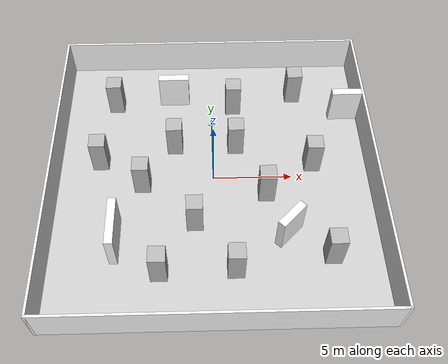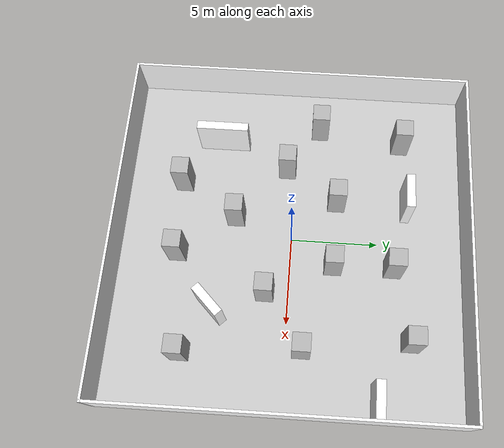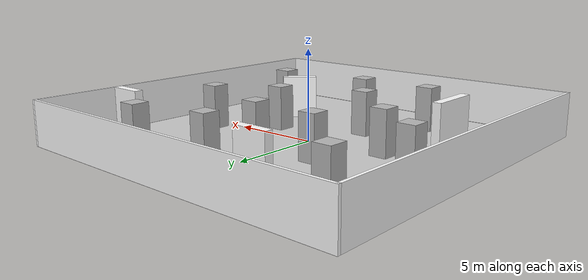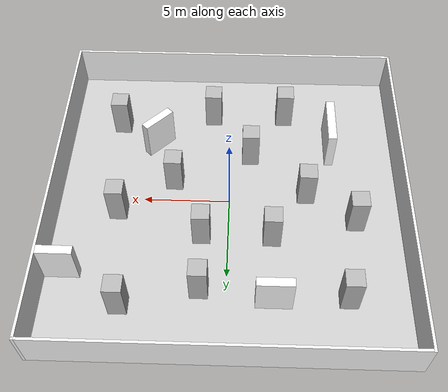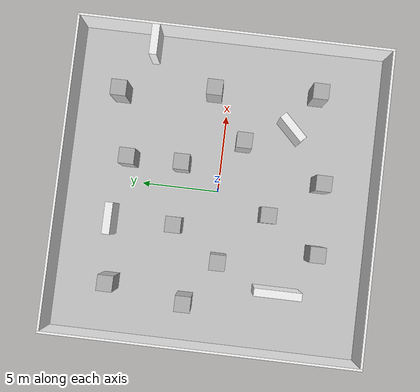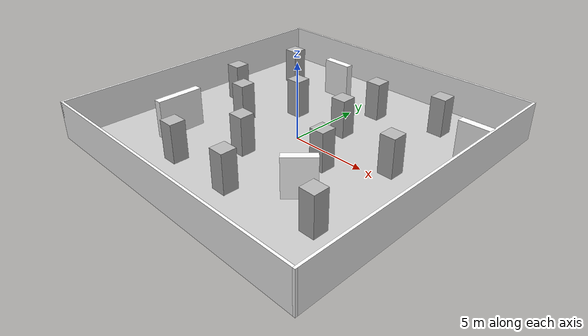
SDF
<sdf version="1.6">
 <world name="default">
  <light name="sun" type="directional">
   <pose>0 0 10 0 -0 0</pose>
   <diffuse>0.8 0.8 0.8 1</diffuse>
   <specular>0.2 0.2 0.2 1</specular>
   <attenuation>
    <range>1000</range>
    <constant>0.9</constant>
    <linear>0.01</linear>
    <quadratic>0.001</quadratic>
   </attenuation>
   <direction>-0.5 0.1 -0.9</direction>
  </light>
  <gravity>0 0 -9.8</gravity>
  <magnetic_field>6e-06 2.3e-05 -4.2e-05</magnetic_field>
  <atmosphere type="adiabatic"/>
  <physics name="default_physics" default="0" type="ode">
   <max_step_size>0.001</max_step_size>
   <real_time_factor>1</real_time_factor>
   <real_time_update_rate>1000</real_time_update_rate>
  </physics>
  <scene><ambient>0.4 0.4 0.4 1</ambient><background>0.7 0.7 0.7 1</background><shadows>1</shadows></scene>
  <audio><device>default</device></audio>
  <spherical_coordinates>
   <surface_model>EARTH_WGS84</surface_model>
   <latitude_deg>0</latitude_deg>
   <longitude_deg>0</longitude_deg>
   <elevation>0</elevation>
   <heading_deg>0</heading_deg>
  </spherical_coordinates>
  <model name="Indoor20x20">
   <pose>0.021784 -0.01983 0 0 -0 0</pose>
   <link name="Wall_0">
    <collision name="Wall_0_Collision">
     <geometry><box><size>20.15 0.15 2.5</size></box></geometry>
     <pose>0 0 1.25 0 -0 0</pose>
    </collision>
    <visual name="Wall_0_Visual">
     <pose>0 0 1.25 0 -0 0</pose>
     <geometry><box><size>20.15 0.15 2.5</size></box></geometry>
     <material>
      <script><uri>file://media/materials/scripts/wallpaper.material</uri><name>wallpaper/wallpaper1</name></script>
      <ambient>1 1 1 1</ambient>
     </material>
     <meta><layer>0</layer></meta>
    </visual>
    <pose>0 10 0 0 -0 3.14159</pose>
   </link>
   <link name="Wall_11">
    <collision name="Wall_11_Collision">
     <geometry><box><size>2 0.5 2.5</size></box></geometry>
     <pose>0 0 1.25 0 -0 0</pose>
    </collision>
    <visual name="Wall_11_Visual">
     <pose>0 0 1.25 0 -0 0</pose>
     <geometry><box><size>2 0.5 2.5</size></box></geometry>
     <material>
      <script><uri>file://media/materials/scripts/wallpaper.material</uri><name>wallpaper/wallpaper2</name></script>
      <ambient>1 1 1 1</ambient>
     </material>
     <meta><layer>0</layer></meta>
    </visual>
    <pose>-2.56518 6.61937 0 0 -0 0</pose>
   </link>
   <link name="Wall_15">
    <collision name="Wall_15_Collision">
     <geometry><box><size>2 0.5 2.5</size></box></geometry>
     <pose>0 0 1.25 0 -0 0</pose>
    </collision>
    <visual name="Wall_15_Visual">
     <pose>0 0 1.25 0 -0 0</pose>
     <geometry><box><size>2 0.5 2.5</size></box></geometry>
     <material>
      <script><uri>file://media/materials/scripts/wallpaper.material</uri><name>wallpaper/wallpaper3</name></script>
      <ambient>1 1 1 1</ambient>
     </material>
     <meta><layer>0</layer></meta>
    </visual>
    <pose>8.97432 5.07655 0 0 -0 3.14159</pose>
   </link>
   <link name="Wall_17">
    <collision name="Wall_17_Collision">
     <geometry><box><size>2 0.5 2.5</size></box></geometry>
     <pose>0 0 1.25 0 -0 0</pose>
    </collision>
    <visual name="Wall_17_Visual">
     <pose>0 0 1.25 0 -0 0</pose>
     <geometry><box><size>2 0.5 2.5</size></box></geometry>
     <material>
      <script><uri>file://media/materials/scripts/wallpaper.material</uri><name>wallpaper/wallpaper4</name></script>
      <ambient>1 1 1 1</ambient>
     </material>
     <meta><layer>0</layer></meta>
    </visual>
    <pose>4.41821 -4.22381 0 0 -0 0.785398</pose>
   </link>
   <link name="Wall_2">
    <collision name="Wall_2_Collision">
     <geometry><box><size>20.15 0.15 2.5</size></box></geometry>
     <pose>0 0 1.25 0 -0 0</pose>
    </collision>
    <visual name="Wall_2_Visual">
     <pose>0 0 1.25 0 -0 0</pose>
     <geometry><box><size>20.15 0.15 2.5</size></box></geometry>
     <material>
      <script><uri>file://media/materials/scripts/wallpaper.material</uri><name>wallpaper/wallpaper5</name></script>
      <ambient>1 1 1 1</ambient>
     </material>
     <meta><layer>0</layer></meta>
    </visual>
    <pose>-10 0 0 0 -0 -1.5708</pose>
   </link>
   <link name="Wall_4">
    <collision name="Wall_4_Collision">
     <geometry><box><size>20.15 0.15 2.5</size></box></geometry>
     <pose>0 0 1.25 0 -0 0</pose>
    </collision>
    <visual name="Wall_4_Visual">
     <pose>0 0 1.25 0 -0 0</pose>
     <geometry><box><size>20.15 0.15 2.5</size></box></geometry>
     <material>
      <script>
       <uri>file://media/materials/scripts/wallpaper.material</uri>
       <name>wallpaper/wallpaper30</name>
      </script>
      <ambient>1 1 1 1</ambient>
     </material>
     <meta><layer>0</layer></meta>
    </visual>
    <pose>0 -10 0 0 -0 0</pose>
   </link>
   <link name="Wall_6">
    <collision name="Wall_6_Collision">
     <geometry><box><size>20.1502 0.15 2.5</size></box></geometry>
     <pose>0 0 1.25 0 -0 0</pose>
    </collision>
    <visual name="Wall_6_Visual">
     <pose>0 0 1.25 0 -0 0</pose>
     <geometry><box><size>20.1502 0.15 2.5</size></box></geometry>
     <material>
      <script>
       <uri>file://media/materials/scripts/wallpaper.material</uri>
       <name>wallpaper/wallpaper35</name>
      </script>
      <ambient>1 1 1 1</ambient>
     </material>
     <meta><layer>0</layer></meta>
    </visual>
    <pose>10 0 0 0 -0 -1.5708</pose>
   </link>
   <link name="Wall_8">
    <collision name="Wall_8_Collision">
     <geometry><box><size>3 0.5 2.5</size></box></geometry>
     <pose>0 0 1.25 0 -0 0</pose>
    </collision>
    <visual name="Wall_8_Visual">
     <pose>0 0 1.25 0 -0 0</pose>
     <geometry><box><size>3 0.5 2.5</size></box></geometry>
     <material>
      <script>
       <uri>file://media/materials/scripts/wallpaper.material</uri>
       <name>wallpaper/wallpaper23</name>
      </script>
      <ambient>1 1 1 1</ambient>
     </material>
     <meta><layer>0</layer></meta>
    </visual>
    <pose>-6.0226 -4.4198 0 0 -0 -1.5708</pose>
   </link>
   <static>1</static>
  </model>
  <model name="my_ground_plane">
   <static>1</static>
   <link name="link">
    <collision name="collision">
     <geometry><plane><normal>0 0 1</normal><size>20 20</size></plane></geometry>
     <surface><friction><ode><mu>100</mu><mu2>50</mu2></ode></friction></surface>
    </collision>
    <visual name="visual">
     <cast_shadows>0</cast_shadows>
     <geometry><plane><normal>0 0 1</normal><size>20 20</size></plane></geometry>
     <material>
      <script>
       <uri>model://ground20x20/materials/scripts</uri>
       <uri>model://ground20x20/materials/textures</uri>
       <name>WoodGround/Image</name>
      </script>
     </material>
    </visual>
   </link>
   <pose>0.013273 0.01508 0 0 -0 0</pose>
  </model>
  <model name="unit_box">
   <pose>-7.26487 1.33856 1.25 2e-06 -2e-06 0.003678</pose>
   <link name="link">
    <inertial>
     <mass>1</mass>
     <inertia>
      <ixx>0.166667</ixx>
      <ixy>0</ixy>
      <ixz>0</ixz>
      <iyy>0.166667</iyy>
      <iyz>0</iyz>
      <izz>0.166667</izz>
     </inertia>
    </inertial>
    <collision name="collision"><geometry><box><size>1 1 2.5</size></box></geometry></collision>
    <visual name="visual">
     <geometry><box><size>1 1 2.5</size></box></geometry>
     <material>
      <script>
       <uri>file://media/materials/scripts/wallpaper.material</uri>
       <name>wallpaper/wallpaper24</name>
      </script>
     </material>
    </visual>
   </link>
  </model>
  <model name="unit_box_0">
   <pose>1.4574 5.89336 1.25 -1e-06 -1e-06 -0.000746</pose>
   <link name="link">
    <inertial>
     <mass>1</mass>
     <inertia>
      <ixx>0.166667</ixx>
      <ixy>0</ixy>
      <ixz>0</ixz>
      <iyy>0.166667</iyy>
      <iyz>0</iyz>
      <izz>0.166667</izz>
     </inertia>
    </inertial>
    <collision name="collision"><geometry><box><size>1 1 2.5</size></box></geometry></collision>
    <visual name="visual">
     <geometry><box><size>1 1 2.5</size></box></geometry>
     <material>
      <script>
       <uri>file://media/materials/scripts/wallpaper.material</uri>
       <name>wallpaper/wallpaper20</name>
      </script>
     </material>
    </visual>
   </link>
  </model>
  <model name="unit_box_1">
   <pose>6.38121 0.91996 1.25 2e-06 2e-06 -0.003671</pose>
   <link name="link">
    <inertial>
     <mass>1</mass>
     <inertia>
      <ixx>0.166667</ixx>
      <ixy>0</ixy>
      <ixz>0</ixz>
      <iyy>0.166667</iyy>
      <iyz>0</iyz>
      <izz>0.166667</izz>
     </inertia>
    </inertial>
    <collision name="collision"><geometry><box><size>1 1 2.5</size></box></geometry></collision>
    <visual name="visual">
     <geometry><box><size>1 1 2.5</size></box></geometry>
     <material>
      <script>
       <uri>file://media/materials/scripts/wallpaper.material</uri>
       <name>wallpaper/wallpaper19</name>
      </script>
     </material>
    </visual>
   </link>
  </model>
  <model name="unit_box_2">
   <pose>-2.47483 2.50954 1.25 2e-06 -2e-06 0.003386</pose>
   <link name="link">
    <inertial>
     <mass>1</mass>
     <inertia>
      <ixx>0.166667</ixx>
      <ixy>0</ixy>
      <ixz>0</ixz>
      <iyy>0.166667</iyy>
      <iyz>0</iyz>
      <izz>0.166667</izz>
     </inertia>
    </inertial>
    <collision name="collision"><geometry><box><size>1 1 2.5</size></box></geometry></collision>
    <visual name="visual">
     <geometry><box><size>1 1 2.5</size></box></geometry>
     <material>
      <script>
       <uri>file://media/materials/scripts/wallpaper.material</uri>
       <name>wallpaper/wallpaper29</name>
      </script>
     </material>
    </visual>
   </link>
  </model>
  <model name="unit_box_3">
   <pose>1.49098 2.45534 1.25 -0 3e-06 0.007757</pose>
   <link name="link">
    <inertial>
     <mass>1</mass>
     <inertia>
      <ixx>0.166667</ixx>
      <ixy>0</ixy>
      <ixz>0</ixz>
      <iyy>0.166667</iyy>
      <iyz>0</iyz>
      <izz>0.166667</izz>
     </inertia>
    </inertial>
    <collision name="collision"><geometry><box><size>1 1 2.5</size></box></geometry></collision>
    <visual name="visual">
     <geometry><box><size>1 1 2.5</size></box></geometry>
     <material>
      <script>
       <uri>file://media/materials/scripts/wallpaper.material</uri>
       <name>wallpaper/wallpaper18</name>
      </script>
     </material>
    </visual>
   </link>
  </model>
  <model name="unit_box_4">
   <pose>-4.49037 -0.499569 1.25 -2e-06 -2e-06 -0.003345</pose>
   <link name="link">
    <inertial>
     <mass>1</mass>
     <inertia>
      <ixx>0.166667</ixx>
      <ixy>0</ixy>
      <ixz>0</ixz>
      <iyy>0.166667</iyy>
      <iyz>0</iyz>
      <izz>0.166667</izz>
     </inertia>
    </inertial>
    <collision name="collision"><geometry><box><size>1 1 2.5</size></box></geometry></collision>
    <visual name="visual">
     <geometry><box><size>1 1 2.5</size></box></geometry>
     <material>
      <script>
       <uri>file://media/materials/scripts/wallpaper.material</uri>
       <name>wallpaper/wallpaper17</name>
      </script>
     </material>
    </visual>
   </link>
  </model>
  <model name="unit_box_5">
   <pose>-3.30307 -6.62809 1.25 -2e-06 2e-06 0.003797</pose>
   <link name="link">
    <inertial>
     <mass>1</mass>
     <inertia>
      <ixx>0.166667</ixx>
      <ixy>0</ixy>
      <ixz>0</ixz>
      <iyy>0.166667</iyy>
      <iyz>0</iyz>
      <izz>0.166667</izz>
     </inertia>
    </inertial>
    <collision name="collision"><geometry><box><size>1 1 2.5</size></box></geometry></collision>
    <visual name="visual">
     <geometry><box><size>1 1 2.5</size></box></geometry>
     <material>
      <script>
       <uri>file://media/materials/scripts/wallpaper.material</uri>
       <name>wallpaper/wallpaper16</name>
      </script>
     </material>
    </visual>
   </link>
  </model>
  <model name="unit_box_6">
   <pose>-1.20767 -3.33222 1.25 0 3e-06 0.008086</pose>
   <link name="link">
    <inertial>
     <mass>1</mass>
     <inertia>
      <ixx>0.166667</ixx>
      <ixy>0</ixy>
      <ixz>0</ixz>
      <iyy>0.166667</iyy>
      <iyz>0</iyz>
      <izz>0.166667</izz>
     </inertia>
    </inertial>
    <collision name="collision"><geometry><box><size>1 1 2.5</size></box></geometry></collision>
    <visual name="visual">
     <geometry><box><size>1 1 2.5</size></box></geometry>
     <material>
      <script>
       <uri>file://media/materials/scripts/wallpaper.material</uri>
       <name>wallpaper/wallpaper15</name>
      </script>
     </material>
    </visual>
   </link>
  </model>
  <model name="unit_box_7">
   <pose>6.88761 -5.73588 1.25 -1e-06 -1e-06 -0.002622</pose>
   <link name="link">
    <inertial>
     <mass>1</mass>
     <inertia>
      <ixx>0.166667</ixx>
      <ixy>0</ixy>
      <ixz>0</ixz>
      <iyy>0.166667</iyy>
      <iyz>0</iyz>
      <izz>0.166667</izz>
     </inertia>
    </inertial>
    <collision name="collision"><geometry><box><size>1 1 2.5</size></box></geometry></collision>
    <visual name="visual">
     <geometry><box><size>1 1 2.5</size></box></geometry>
     <material>
      <script>
       <uri>file://media/materials/scripts/wallpaper.material</uri>
       <name>wallpaper/wallpaper14</name>
      </script>
     </material>
    </visual>
   </link>
  </model>
  <model name="unit_box_8">
   <pose>1.15122 -6.5272 1.25 2e-06 2e-06 -0.003996</pose>
   <link name="link">
    <inertial>
     <mass>1</mass>
     <inertia>
      <ixx>0.166667</ixx>
      <ixy>0</ixy>
      <ixz>0</ixz>
      <iyy>0.166667</iyy>
      <iyz>0</iyz>
      <izz>0.166667</izz>
     </inertia>
    </inertial>
    <collision name="collision"><geometry><box><size>1 1 2.5</size></box></geometry></collision>
    <visual name="visual">
     <geometry><box><size>1 1 2.5</size></box></geometry>
     <material>
      <script><uri>file://media/materials/scripts/wallpaper.material</uri><name>wallpaper/wallpaper6</name></script>
     </material>
    </visual>
   </link>
  </model>
  <model name="unit_box_9">
   <pose>5.66698 6.91712 1.25 1e-06 -1e-06 0.001545</pose>
   <link name="link">
    <inertial>
     <mass>1</mass>
     <inertia>
      <ixx>0.166667</ixx>
      <ixy>0</ixy>
      <ixz>0</ixz>
      <iyy>0.166667</iyy>
      <iyz>0</iyz>
      <izz>0.166667</izz>
     </inertia>
    </inertial>
    <collision name="collision"><geometry><box><size>1 1 2.5</size></box></geometry></collision>
    <visual name="visual">
     <geometry><box><size>1 1 2.5</size></box></geometry>
     <material>
      <script>
       <uri>file://media/materials/scripts/wallpaper.material</uri>
       <name>wallpaper/wallpaper10</name>
      </script>
     </material>
    </visual>
   </link>
  </model>
  <model name="unit_box_10">
   <pose>3.27952 -1.3094 1.25 0 3e-06 -0.007783</pose>
   <link name="link">
    <inertial>
     <mass>1</mass>
     <inertia>
      <ixx>0.166667</ixx>
      <ixy>0</ixy>
      <ixz>0</ixz>
      <iyy>0.166667</iyy>
      <iyz>0</iyz>
      <izz>0.166667</izz>
     </inertia>
    </inertial>
    <collision name="collision"><geometry><box><size>1 1 2.5</size></box></geometry></collision>
    <visual name="visual">
     <geometry><box><size>1 1 2.5</size></box></geometry>
     <material>
      <script>
       <uri>file://media/materials/scripts/wallpaper.material</uri>
       <name>wallpaper/wallpaper26</name>
      </script>
     </material>
    </visual>
   </link>
  </model>
  <model name="unit_box_11">
   <pose>-6.54909 6.25227 1.25 -2e-06 -2e-06 -0.003755</pose>
   <link name="link">
    <inertial>
     <mass>1</mass>
     <inertia>
      <ixx>0.166667</ixx>
      <ixy>0</ixy>
      <ixz>0</ixz>
      <iyy>0.166667</iyy>
      <iyz>0</iyz>
      <izz>0.166667</izz>
     </inertia>
    </inertial>
    <collision name="collision"><geometry><box><size>1 1 2.5</size></box></geometry></collision>
    <visual name="visual">
     <geometry><box><size>1 1 2.5</size></box></geometry>
     <material>
      <script>
       <uri>file://media/materials/scripts/wallpaper.material</uri>
       <name>wallpaper/wallpaper25</name>
      </script>
     </material>
    </visual>
   </link>
  </model>
 </world>
</sdf>
